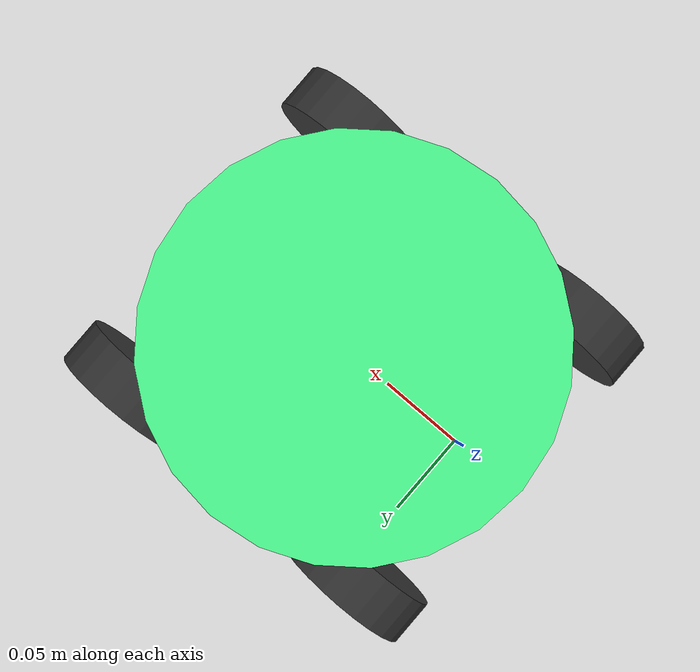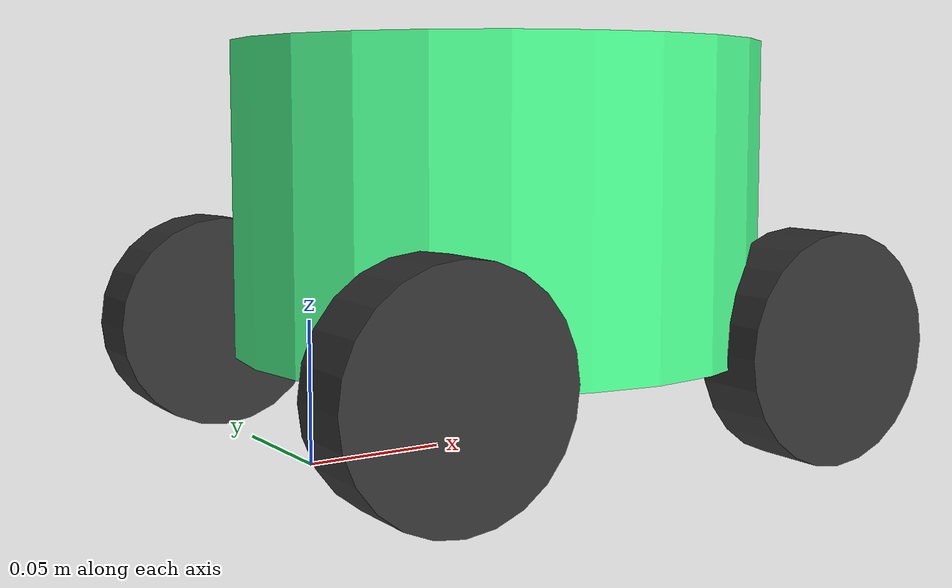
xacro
<?xml version="1.0"?>

<!-- A simple model of the racecar for rviz -->

<robot xmlns:xacro="http://www.ros.org/wiki/xacro" name="turtlebot">

  <xacro:property name="wheelbase" value="0.15" />
  <xacro:property name="width" value="0.15" />
  <xacro:property name="height" value="0.1" />
  <xacro:property name="ground_offset" value="0.04" />
  <xacro:property name="wheel_radius" value="0.040" />
  <xacro:property name="wheel_length" value="0.025" />
  <xacro:property name="laser_distance_from_base_link" value="0.275" />
  <xacro:property name="laser_height" value="0.05" />
  <xacro:property name="laser_radius" value="0.026" />

  <material name="black">
    <color rgba="0.2 0.2 0.2 1."/>
  </material>

  <material name="blue">
    <color rgba="0.3 1. 0.57 1."/>
  </material>

  <link name="base_link">
    <visual>
      <origin xyz="${wheelbase/2} 0 ${ground_offset+height/2}"/>
      <geometry>
        <cylinder radius="${width/2+0.02}" length="${height+0.01}"/>
      </geometry>
      <material name="blue"/>
    </visual>
  </link>

  <joint name="base_to_back_left_wheel" type="fixed">
    <parent link="base_link"/>
    <child link="back_left_wheel"/>
    <origin xyz="0 ${(wheel_length+width)/2} ${wheel_radius}"/>
  </joint>

  <link name="back_left_wheel">
    <visual>
      <geometry>
        <cylinder radius="${wheel_radius}" length="${wheel_length}"/>
      </geometry>
      <material name="black"/>
      <origin rpy="${pi/2} 0 0"/>
    </visual>
  </link>

  <joint name="base_to_back_right_wheel" type="fixed">
    <parent link="base_link"/>
    <child link="back_right_wheel"/>
    <origin xyz="0 ${-(wheel_length+width)/2} ${wheel_radius}"/>
  </joint>

  <link name="back_right_wheel">
    <visual>
      <geometry>
        <cylinder radius="${wheel_radius}" length="${wheel_length}"/>
      </geometry>
      <material name="black"/>
      <origin rpy="${pi/2} 0 0"/>
    </visual>
  </link>

  <joint name="base_to_front_left_hinge" type="fixed">
    <parent link="base_link"/>
    <child link="front_left_hinge"/>
    <origin xyz="${wheelbase} ${(wheel_length+width)/2} ${wheel_radius}"/>
  </joint>

  <link name="front_left_hinge"/>

  <joint name="front_left_hinge_to_wheel" type="continuous">
    <parent link="front_left_hinge"/>
    <child link="front_left_wheel"/>
  </joint>

  <link name="front_left_wheel">
    <visual>
      <geometry>
        <cylinder radius="${wheel_radius}" length="${wheel_length}"/>
      </geometry>
      <material name="black"/>
      <origin rpy="${pi/2} 0 0"/>
    </visual>
  </link>

  <joint name="base_to_front_right_hinge" type="fixed">
    <parent link="base_link"/>
    <child link="front_right_hinge"/>
    <origin xyz="${wheelbase} ${-(wheel_length+width)/2} ${wheel_radius}"/>
  </joint>

  <link name="front_right_hinge"/>

  <joint name="front_right_hinge_to_wheel" type="continuous">
    <parent link="front_right_hinge"/>
    <child link="front_right_wheel"/>
  </joint>

  <link name="front_right_wheel">
    <visual>
      <geometry>
        <cylinder radius="${wheel_radius}" length="${wheel_length}"/>
      </geometry>
      <material name="black"/>
      <origin rpy="${pi/2} 0 0"/>
    </visual>
  </link>

</robot>
